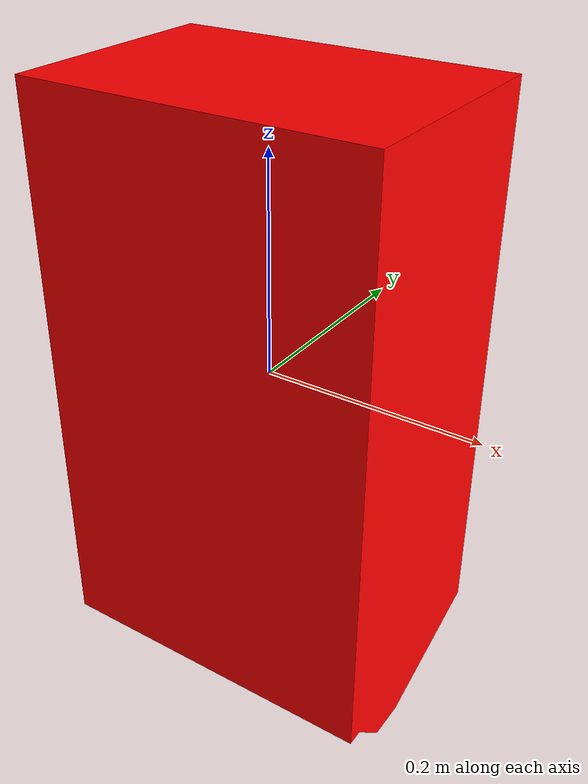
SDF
<?xml version="1.0"?>
<sdf version="1.8">
  <model name="erc_colleciton_bin">
    <link name="collection_bin_base_link">

      <inertial>
        <pose>-0.000869450515234303 -0.0349219950638846 -2.95363168814333E-17 0 0 0</pose>
        <mass>4.70313898335195</mass>
        <inertia>
          <ixx>0.0896407437951023</ixx>
          <ixy>0.00627075393219412</ixy>
          <ixz>-5.70546165916065E-17</ixz>
          <iyy>0.223231929617035</iyy>
          <iyz>1.25985954159326E-17</iyz>
          <izz>0.175200579933907</izz>
        </inertia>
      </inertial>

      <visual name="base_link_collection_bin_visual">
        <pose>0 0 0 0 0 0</pose>
        <geometry>
          <mesh>
            <uri>model://erc_description/models/collection_bin/meshes/erc_base_collection_bin.STL</uri>

          </mesh>
        </geometry>
        <material>
          <ambient>1 0 0 1</ambient>
          <diffuse>1 0 0 1</diffuse>
        </material>
      </visual>

      <collision name="base_link_collection_bin_collision">
        <pose>0 0 0 0 0 0</pose>
        <geometry>
          <mesh>
            <uri>model://erc_description/models/collection_bin/meshes/erc_base_collection_bin.STL</uri>

          </mesh>
        </geometry>
      </collision>

      <sensor name="bin_contact_sensor" type="contact">
        <update_rate>10</update_rate>
        <always_on>true</always_on>
        <contact>
          <collision>base_link_collection_bin_collision</collision>
        </contact>
      </sensor>

    </link>
  </model>
</sdf>
